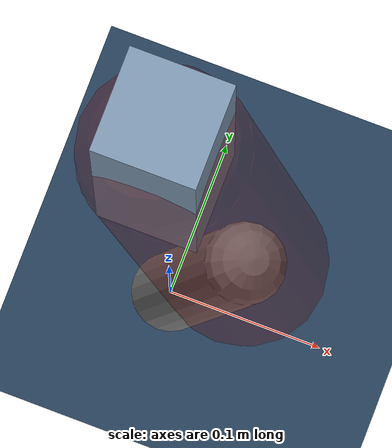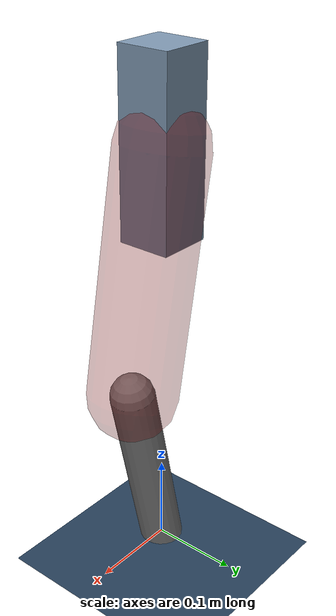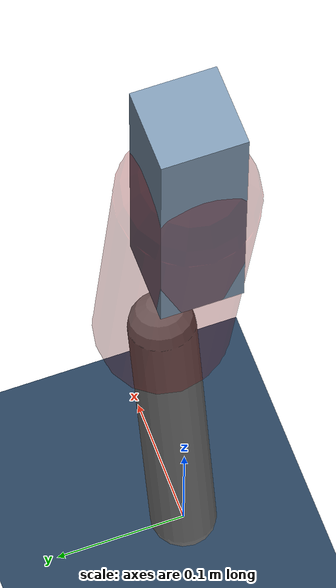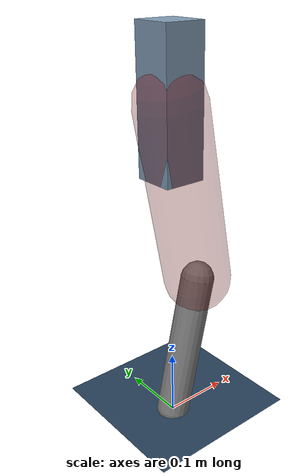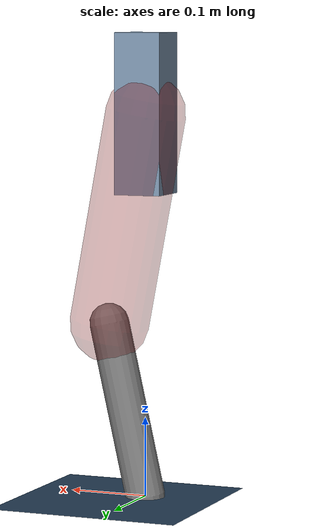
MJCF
<mujoco model="Hopper2D">
	<compiler inertiafromgeom="true" angle="radian" />
	<option timestep="0.001" integrator="implicit" cone="elliptic" solver="Newton" tolerance="1e-10" />

	<default>
		<geom contype="1" conaffinity="1" condim="3" friction="2 0.005 0.0001" solref="0.005 1" />
		<joint limited="true" damping="0.1" />
	</default>

	<asset>
		<texture name="skybox" type="skybox" builtin="gradient" rgb1=".4 .6 .8" rgb2="0 0 0" width="800" height="800" />
		<texture name="grid" type="2d" builtin="checker" rgb1=".1 .2 .3" rgb2=".2 .3 .4" width="300" height="300" mark="edge" markrgb=".2 .3 .4" />
		<material name="ground" texture="grid" texrepeat="1 1" texuniform="true" reflectance="0.1" />
		<material name="leg" rgba="0.5 0.6 0.7 1" />
	</asset>

	<worldbody>

		<geom name="floor" type="plane" size="5 5 0.25" material="ground" />

		<light directional="false" diffuse="0.8 0.8 0.8" specular="0.3 0.3 0.3" pos="0 0 2" dir="0 0 -1" />
		<light mode="targetbodycom" target="base" directional="false" diffuse="0.8 0.8 0.8" specular="0.3 0.3 0.3" pos="0 0 2" dir="0 0 -1" />

		<camera name="fixed" pos="0 -2 1" xyaxes="1 0 0 0 0 1" />
		<camera name="tracking" mode="trackcom" pos="0 -3 1" />

		<body name="root" pos="0 0 0.48167027250978245">
			<joint name="slide_x" type="slide" axis="1 0 0" range="-100 100" />
			<joint name="slide_z" type="slide" axis="0 0 1" range="0 10" />

			<body name="base" pos="0 0 0">
				<geom name="torso" type="box" size="0.03 0.03 0.1" mass="4.133" material="leg" />

				<body name="link1" pos="0 0 0" euler="0 1.3869121123091546 0">
					<joint type="hinge" axis="0 -1 0" pos="0 0 0" name="hinge1" limited="true" range="-3.14 3.14" stiffness="0" damping="0.1" />
					<geom name="thigh" type="capsule" fromto="0 0 0 0.26857389551154626 0 0" size="0.05" rgba="0.5 0 0 0.3" mass="0.9048921283300202" />

					<body name="link2" pos="0.26857389551154626 0 0" euler="0 0.40582480003718646 0">
						<joint type="hinge" axis="0 -1 0" pos="0 0 0" name="hinge2" limited="true" range="-3.14 3.14" stiffness="0" damping="0.1" />
						<geom name="shank" type="capsule" fromto="0 0 0 0.22309637699823623 0 0" size="0.025" mass="0.420277101598589" />

					</body>
				</body>
			</body>
		</body>
	</worldbody>

	<actuator>
		<motor name="torque1" joint="hinge1" ctrlrange="-254.02590548363835 254.02590548363835" ctrllimited="true" gear="1" />
		<motor name="torque2" joint="hinge2" ctrlrange="-157.53847946914547 157.53847946914547" ctrllimited="true" gear="1" />
	</actuator>
</mujoco>
